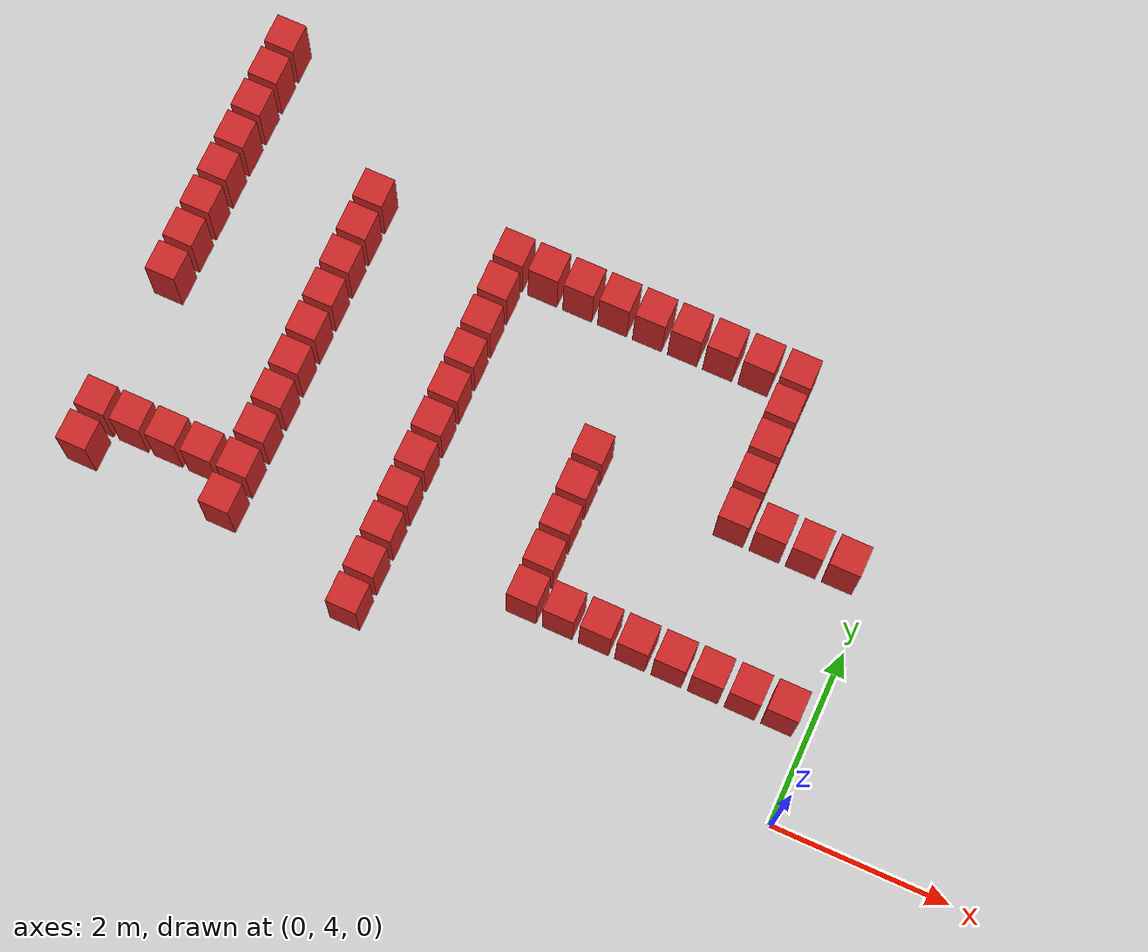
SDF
<sdf version="1.6">
 <world name="default">
  <model name="ground_plane">
   <static>1</static>
   <link name="link">
    <collision name="collision">
     <geometry><plane><normal>0 0 1</normal><size>100 100</size></plane></geometry>
     <surface><friction><ode><mu>100</mu><mu2>50</mu2></ode></friction></surface>
    </collision>
    <visual name="visual">
     <cast_shadows>0</cast_shadows>
     <geometry><plane><normal>0 0 1</normal><size>100 100</size></plane></geometry>
     <material>
      <script><uri>file://media/materials/scripts/gazebo.material</uri><name>Gazebo/Grey</name></script>
     </material>
    </visual>
   </link>
  </model>
  <model name="box_obstacle25">
   <static>0</static>
   <link name="link">
    <pose>0 0 0.1 0 -0 0</pose>
    <inertial>
     <mass>100</mass>
     <inertia>
      <ixx>0.166667</ixx>
      <ixy>0</ixy>
      <ixz>0</ixz>
      <iyy>0.166667</iyy>
      <iyz>0</iyz>
      <izz>0.166667</izz>
     </inertia>
    </inertial>
    <collision name="collision"><geometry><box><size>0.35 0.35 0.8</size></box></geometry></collision>
    <visual name="visual">
     <geometry><box><size>0.35 0.35 0.8</size></box></geometry>
     <material>
      <script><name>Gazebo/Red</name><uri>file://media/materials/scripts/gazebo.material</uri></script>
     </material>
    </visual>
   </link>
   <pose>-8.32034 4.70006 0.300001 -1e-06 1.7e-05 0.000735</pose>
  </model>
  <model name="box_obstacle26">
   <static>0</static>
   <link name="link">
    <pose>0 0 0.1 0 -0 0</pose>
    <inertial>
     <mass>100</mass>
     <inertia>
      <ixx>0.166667</ixx>
      <ixy>0</ixy>
      <ixz>0</ixz>
      <iyy>0.166667</iyy>
      <iyz>0</iyz>
      <izz>0.166667</izz>
     </inertia>
    </inertial>
    <collision name="collision"><geometry><box><size>0.35 0.35 0.8</size></box></geometry></collision>
    <visual name="visual">
     <geometry><box><size>0.35 0.35 0.8</size></box></geometry>
     <material>
      <script><name>Gazebo/Red</name><uri>file://media/materials/scripts/gazebo.material</uri></script>
     </material>
    </visual>
   </link>
   <pose>-8.32034 5.12006 0.300001 -1e-06 1.7e-05 0.000735</pose>
  </model>
  <model name="box_obstacle27">
   <static>0</static>
   <link name="link">
    <pose>0 0 0.1 0 -0 0</pose>
    <inertial>
     <mass>100</mass>
     <inertia>
      <ixx>0.166667</ixx>
      <ixy>0</ixy>
      <ixz>0</ixz>
      <iyy>0.166667</iyy>
      <iyz>0</iyz>
      <izz>0.166667</izz>
     </inertia>
    </inertial>
    <collision name="collision"><geometry><box><size>0.35 0.35 0.8</size></box></geometry></collision>
    <visual name="visual">
     <geometry><box><size>0.35 0.35 0.8</size></box></geometry>
     <material>
      <script><name>Gazebo/Red</name><uri>file://media/materials/scripts/gazebo.material</uri></script>
     </material>
    </visual>
   </link>
   <pose>-8.32034 6.80006 0.300001 -1e-06 1.7e-05 0.000735</pose>
  </model>
  <model name="box_obstacle28">
   <static>0</static>
   <link name="link">
    <pose>0 0 0.1 0 -0 0</pose>
    <inertial>
     <mass>100</mass>
     <inertia>
      <ixx>0.166667</ixx>
      <ixy>0</ixy>
      <ixz>0</ixz>
      <iyy>0.166667</iyy>
      <iyz>0</iyz>
      <izz>0.166667</izz>
     </inertia>
    </inertial>
    <collision name="collision"><geometry><box><size>0.35 0.35 0.8</size></box></geometry></collision>
    <visual name="visual">
     <geometry><box><size>0.35 0.35 0.8</size></box></geometry>
     <material>
      <script><name>Gazebo/Red</name><uri>file://media/materials/scripts/gazebo.material</uri></script>
     </material>
    </visual>
   </link>
   <pose>-8.32034 7.22006 0.300001 -1e-06 1.7e-05 0.000735</pose>
  </model>
  <model name="box_obstacle29">
   <static>0</static>
   <link name="link">
    <pose>0 0 0.1 0 -0 0</pose>
    <inertial>
     <mass>100</mass>
     <inertia>
      <ixx>0.166667</ixx>
      <ixy>0</ixy>
      <ixz>0</ixz>
      <iyy>0.166667</iyy>
      <iyz>0</iyz>
      <izz>0.166667</izz>
     </inertia>
    </inertial>
    <collision name="collision"><geometry><box><size>0.35 0.35 0.8</size></box></geometry></collision>
    <visual name="visual">
     <geometry><box><size>0.35 0.35 0.8</size></box></geometry>
     <material>
      <script><name>Gazebo/Red</name><uri>file://media/materials/scripts/gazebo.material</uri></script>
     </material>
    </visual>
   </link>
   <pose>-8.32034 7.64006 0.300001 -1e-06 1.7e-05 0.000735</pose>
  </model>
  <model name="box_obstacle30">
   <static>0</static>
   <link name="link">
    <pose>0 0 0.1 0 -0 0</pose>
    <inertial>
     <mass>100</mass>
     <inertia>
      <ixx>0.166667</ixx>
      <ixy>0</ixy>
      <ixz>0</ixz>
      <iyy>0.166667</iyy>
      <iyz>0</iyz>
      <izz>0.166667</izz>
     </inertia>
    </inertial>
    <collision name="collision"><geometry><box><size>0.35 0.35 0.8</size></box></geometry></collision>
    <visual name="visual">
     <geometry><box><size>0.35 0.35 0.8</size></box></geometry>
     <material>
      <script><name>Gazebo/Red</name><uri>file://media/materials/scripts/gazebo.material</uri></script>
     </material>
    </visual>
   </link>
   <pose>-8.32034 8.06006 0.300001 -1e-06 1.7e-05 0.000735</pose>
  </model>
  <model name="box_obstacle31">
   <static>0</static>
   <link name="link">
    <pose>0 0 0.1 0 -0 0</pose>
    <inertial>
     <mass>100</mass>
     <inertia>
      <ixx>0.166667</ixx>
      <ixy>0</ixy>
      <ixz>0</ixz>
      <iyy>0.166667</iyy>
      <iyz>0</iyz>
      <izz>0.166667</izz>
     </inertia>
    </inertial>
    <collision name="collision"><geometry><box><size>0.35 0.35 0.8</size></box></geometry></collision>
    <visual name="visual">
     <geometry><box><size>0.35 0.35 0.8</size></box></geometry>
     <material>
      <script><name>Gazebo/Red</name><uri>file://media/materials/scripts/gazebo.material</uri></script>
     </material>
    </visual>
   </link>
   <pose>-8.32034 8.48006 0.300001 -1e-06 1.7e-05 0.000735</pose>
  </model>
  <model name="box_obstacle32">
   <static>0</static>
   <link name="link">
    <pose>0 0 0.1 0 -0 0</pose>
    <inertial>
     <mass>100</mass>
     <inertia>
      <ixx>0.166667</ixx>
      <ixy>0</ixy>
      <ixz>0</ixz>
      <iyy>0.166667</iyy>
      <iyz>0</iyz>
      <izz>0.166667</izz>
     </inertia>
    </inertial>
    <collision name="collision"><geometry><box><size>0.35 0.35 0.8</size></box></geometry></collision>
    <visual name="visual">
     <geometry><box><size>0.35 0.35 0.8</size></box></geometry>
     <material>
      <script><name>Gazebo/Red</name><uri>file://media/materials/scripts/gazebo.material</uri></script>
     </material>
    </visual>
   </link>
   <pose>-8.32034 8.90006 0.300001 -1e-06 1.7e-05 0.000735</pose>
  </model>
  <model name="box_obstacle33">
   <static>0</static>
   <link name="link">
    <pose>0 0 0.1 0 -0 0</pose>
    <inertial>
     <mass>100</mass>
     <inertia>
      <ixx>0.166667</ixx>
      <ixy>0</ixy>
      <ixz>0</ixz>
      <iyy>0.166667</iyy>
      <iyz>0</iyz>
      <izz>0.166667</izz>
     </inertia>
    </inertial>
    <collision name="collision"><geometry><box><size>0.35 0.35 0.8</size></box></geometry></collision>
    <visual name="visual">
     <geometry><box><size>0.35 0.35 0.8</size></box></geometry>
     <material>
      <script><name>Gazebo/Red</name><uri>file://media/materials/scripts/gazebo.material</uri></script>
     </material>
    </visual>
   </link>
   <pose>-8.32034 9.32006 0.300001 -1e-06 1.7e-05 0.000735</pose>
  </model>
  <model name="box_obstacle34">
   <static>0</static>
   <link name="link">
    <pose>0 0 0.1 0 -0 0</pose>
    <inertial>
     <mass>100</mass>
     <inertia>
      <ixx>0.166667</ixx>
      <ixy>0</ixy>
      <ixz>0</ixz>
      <iyy>0.166667</iyy>
      <iyz>0</iyz>
      <izz>0.166667</izz>
     </inertia>
    </inertial>
    <collision name="collision"><geometry><box><size>0.35 0.35 0.8</size></box></geometry></collision>
    <visual name="visual">
     <geometry><box><size>0.35 0.35 0.8</size></box></geometry>
     <material>
      <script><name>Gazebo/Red</name><uri>file://media/materials/scripts/gazebo.material</uri></script>
     </material>
    </visual>
   </link>
   <pose>-8.32034 9.74006 0.300001 -1e-06 1.7e-05 0.000735</pose>
  </model>
  <model name="box_obstacle39">
   <static>0</static>
   <link name="link">
    <pose>0 0 0.1 0 -0 0</pose>
    <inertial>
     <mass>100</mass>
     <inertia>
      <ixx>0.166667</ixx>
      <ixy>0</ixy>
      <ixz>0</ixz>
      <iyy>0.166667</iyy>
      <iyz>0</iyz>
      <izz>0.166667</izz>
     </inertia>
    </inertial>
    <collision name="collision"><geometry><box><size>0.35 0.35 0.8</size></box></geometry></collision>
    <visual name="visual">
     <geometry><box><size>0.35 0.35 0.8</size></box></geometry>
     <material>
      <script><name>Gazebo/Red</name><uri>file://media/materials/scripts/gazebo.material</uri></script>
     </material>
    </visual>
   </link>
   <pose>-7.90034 5.12006 0.300001 -1e-06 1.7e-05 0.000735</pose>
  </model>
  <model name="box_obstacle44">
   <static>0</static>
   <link name="link">
    <pose>0 0 0.1 0 -0 0</pose>
    <inertial>
     <mass>100</mass>
     <inertia>
      <ixx>0.166667</ixx>
      <ixy>0</ixy>
      <ixz>0</ixz>
      <iyy>0.166667</iyy>
      <iyz>0</iyz>
      <izz>0.166667</izz>
     </inertia>
    </inertial>
    <collision name="collision"><geometry><box><size>0.35 0.35 0.8</size></box></geometry></collision>
    <visual name="visual">
     <geometry><box><size>0.35 0.35 0.8</size></box></geometry>
     <material>
      <script><name>Gazebo/Red</name><uri>file://media/materials/scripts/gazebo.material</uri></script>
     </material>
    </visual>
   </link>
   <pose>-7.48034 5.12006 0.300001 -1e-06 1.7e-05 0.000735</pose>
  </model>
  <model name="box_obstacle49">
   <static>0</static>
   <link name="link">
    <pose>0 0 0.1 0 -0 0</pose>
    <inertial>
     <mass>100</mass>
     <inertia>
      <ixx>0.166667</ixx>
      <ixy>0</ixy>
      <ixz>0</ixz>
      <iyy>0.166667</iyy>
      <iyz>0</iyz>
      <izz>0.166667</izz>
     </inertia>
    </inertial>
    <collision name="collision"><geometry><box><size>0.35 0.35 0.8</size></box></geometry></collision>
    <visual name="visual">
     <geometry><box><size>0.35 0.35 0.8</size></box></geometry>
     <material>
      <script><name>Gazebo/Red</name><uri>file://media/materials/scripts/gazebo.material</uri></script>
     </material>
    </visual>
   </link>
   <pose>-7.06034 5.12006 0.300001 -1e-06 1.7e-05 0.000735</pose>
  </model>
  <model name="box_obstacle72">
   <static>0</static>
   <link name="link">
    <pose>0 0 0.1 0 -0 0</pose>
    <inertial>
     <mass>100</mass>
     <inertia>
      <ixx>0.166667</ixx>
      <ixy>0</ixy>
      <ixz>0</ixz>
      <iyy>0.166667</iyy>
      <iyz>0</iyz>
      <izz>0.166667</izz>
     </inertia>
    </inertial>
    <collision name="collision"><geometry><box><size>0.35 0.35 0.8</size></box></geometry></collision>
    <visual name="visual">
     <geometry><box><size>0.35 0.35 0.8</size></box></geometry>
     <material>
      <script><name>Gazebo/Red</name><uri>file://media/materials/scripts/gazebo.material</uri></script>
     </material>
    </visual>
   </link>
   <pose>-6.64034 4.70006 0.300001 -1e-06 1.7e-05 0.000735</pose>
  </model>
  <model name="box_obstacle73">
   <static>0</static>
   <link name="link">
    <pose>0 0 0.1 0 -0 0</pose>
    <inertial>
     <mass>100</mass>
     <inertia>
      <ixx>0.166667</ixx>
      <ixy>0</ixy>
      <ixz>0</ixz>
      <iyy>0.166667</iyy>
      <iyz>0</iyz>
      <izz>0.166667</izz>
     </inertia>
    </inertial>
    <collision name="collision"><geometry><box><size>0.35 0.35 0.8</size></box></geometry></collision>
    <visual name="visual">
     <geometry><box><size>0.35 0.35 0.8</size></box></geometry>
     <material>
      <script><name>Gazebo/Red</name><uri>file://media/materials/scripts/gazebo.material</uri></script>
     </material>
    </visual>
   </link>
   <pose>-6.64034 5.12006 0.300001 -1e-06 1.7e-05 0.000735</pose>
  </model>
  <model name="box_obstacle74">
   <static>0</static>
   <link name="link">
    <pose>0 0 0.1 0 -0 0</pose>
    <inertial>
     <mass>100</mass>
     <inertia>
      <ixx>0.166667</ixx>
      <ixy>0</ixy>
      <ixz>0</ixz>
      <iyy>0.166667</iyy>
      <iyz>0</iyz>
      <izz>0.166667</izz>
     </inertia>
    </inertial>
    <collision name="collision"><geometry><box><size>0.35 0.35 0.8</size></box></geometry></collision>
    <visual name="visual">
     <geometry><box><size>0.35 0.35 0.8</size></box></geometry>
     <material>
      <script><name>Gazebo/Red</name><uri>file://media/materials/scripts/gazebo.material</uri></script>
     </material>
    </visual>
   </link>
   <pose>-6.64034 5.54006 0.300001 -1e-06 1.7e-05 0.000735</pose>
  </model>
  <model name="box_obstacle75">
   <static>0</static>
   <link name="link">
    <pose>0 0 0.1 0 -0 0</pose>
    <inertial>
     <mass>100</mass>
     <inertia>
      <ixx>0.166667</ixx>
      <ixy>0</ixy>
      <ixz>0</ixz>
      <iyy>0.166667</iyy>
      <iyz>0</iyz>
      <izz>0.166667</izz>
     </inertia>
    </inertial>
    <collision name="collision"><geometry><box><size>0.35 0.35 0.8</size></box></geometry></collision>
    <visual name="visual">
     <geometry><box><size>0.35 0.35 0.8</size></box></geometry>
     <material>
      <script><name>Gazebo/Red</name><uri>file://media/materials/scripts/gazebo.material</uri></script>
     </material>
    </visual>
   </link>
   <pose>-6.64034 5.96006 0.300001 -1e-06 1.7e-05 0.000735</pose>
  </model>
  <model name="box_obstacle76">
   <static>0</static>
   <link name="link">
    <pose>0 0 0.1 0 -0 0</pose>
    <inertial>
     <mass>100</mass>
     <inertia>
      <ixx>0.166667</ixx>
      <ixy>0</ixy>
      <ixz>0</ixz>
      <iyy>0.166667</iyy>
      <iyz>0</iyz>
      <izz>0.166667</izz>
     </inertia>
    </inertial>
    <collision name="collision"><geometry><box><size>0.35 0.35 0.8</size></box></geometry></collision>
    <visual name="visual">
     <geometry><box><size>0.35 0.35 0.8</size></box></geometry>
     <material>
      <script><name>Gazebo/Red</name><uri>file://media/materials/scripts/gazebo.material</uri></script>
     </material>
    </visual>
   </link>
   <pose>-6.64034 6.38006 0.300001 -1e-06 1.7e-05 0.000735</pose>
  </model>
  <model name="box_obstacle77">
   <static>0</static>
   <link name="link">
    <pose>0 0 0.1 0 -0 0</pose>
    <inertial>
     <mass>100</mass>
     <inertia>
      <ixx>0.166667</ixx>
      <ixy>0</ixy>
      <ixz>0</ixz>
      <iyy>0.166667</iyy>
      <iyz>0</iyz>
      <izz>0.166667</izz>
     </inertia>
    </inertial>
    <collision name="collision"><geometry><box><size>0.35 0.35 0.8</size></box></geometry></collision>
    <visual name="visual">
     <geometry><box><size>0.35 0.35 0.8</size></box></geometry>
     <material>
      <script><name>Gazebo/Red</name><uri>file://media/materials/scripts/gazebo.material</uri></script>
     </material>
    </visual>
   </link>
   <pose>-6.64034 6.80006 0.300001 -1e-06 1.7e-05 0.000735</pose>
  </model>
  <model name="box_obstacle78">
   <static>0</static>
   <link name="link">
    <pose>0 0 0.1 0 -0 0</pose>
    <inertial>
     <mass>100</mass>
     <inertia>
      <ixx>0.166667</ixx>
      <ixy>0</ixy>
      <ixz>0</ixz>
      <iyy>0.166667</iyy>
      <iyz>0</iyz>
      <izz>0.166667</izz>
     </inertia>
    </inertial>
    <collision name="collision"><geometry><box><size>0.35 0.35 0.8</size></box></geometry></collision>
    <visual name="visual">
     <geometry><box><size>0.35 0.35 0.8</size></box></geometry>
     <material>
      <script><name>Gazebo/Red</name><uri>file://media/materials/scripts/gazebo.material</uri></script>
     </material>
    </visual>
   </link>
   <pose>-6.64034 7.22006 0.300001 -1e-06 1.7e-05 0.000735</pose>
  </model>
  <model name="box_obstacle79">
   <static>0</static>
   <link name="link">
    <pose>0 0 0.1 0 -0 0</pose>
    <inertial>
     <mass>100</mass>
     <inertia>
      <ixx>0.166667</ixx>
      <ixy>0</ixy>
      <ixz>0</ixz>
      <iyy>0.166667</iyy>
      <iyz>0</iyz>
      <izz>0.166667</izz>
     </inertia>
    </inertial>
    <collision name="collision"><geometry><box><size>0.35 0.35 0.8</size></box></geometry></collision>
    <visual name="visual">
     <geometry><box><size>0.35 0.35 0.8</size></box></geometry>
     <material>
      <script><name>Gazebo/Red</name><uri>file://media/materials/scripts/gazebo.material</uri></script>
     </material>
    </visual>
   </link>
   <pose>-6.64034 7.64006 0.300001 -1e-06 1.7e-05 0.000735</pose>
  </model>
  <model name="box_obstacle80">
   <static>0</static>
   <link name="link">
    <pose>0 0 0.1 0 -0 0</pose>
    <inertial>
     <mass>100</mass>
     <inertia>
      <ixx>0.166667</ixx>
      <ixy>0</ixy>
      <ixz>0</ixz>
      <iyy>0.166667</iyy>
      <iyz>0</iyz>
      <izz>0.166667</izz>
     </inertia>
    </inertial>
    <collision name="collision"><geometry><box><size>0.35 0.35 0.8</size></box></geometry></collision>
    <visual name="visual">
     <geometry><box><size>0.35 0.35 0.8</size></box></geometry>
     <material>
      <script><name>Gazebo/Red</name><uri>file://media/materials/scripts/gazebo.material</uri></script>
     </material>
    </visual>
   </link>
   <pose>-6.64034 8.06006 0.300001 -1e-06 1.7e-05 0.000735</pose>
  </model>
  <model name="box_obstacle81">
   <static>0</static>
   <link name="link">
    <pose>0 0 0.1 0 -0 0</pose>
    <inertial>
     <mass>100</mass>
     <inertia>
      <ixx>0.166667</ixx>
      <ixy>0</ixy>
      <ixz>0</ixz>
      <iyy>0.166667</iyy>
      <iyz>0</iyz>
      <izz>0.166667</izz>
     </inertia>
    </inertial>
    <collision name="collision"><geometry><box><size>0.35 0.35 0.8</size></box></geometry></collision>
    <visual name="visual">
     <geometry><box><size>0.35 0.35 0.8</size></box></geometry>
     <material>
      <script><name>Gazebo/Red</name><uri>file://media/materials/scripts/gazebo.material</uri></script>
     </material>
    </visual>
   </link>
   <pose>-6.64034 8.48006 0.300001 -1e-06 1.7e-05 0.000735</pose>
  </model>
  <model name="box_obstacle112">
   <static>0</static>
   <link name="link">
    <pose>0 0 0.1 0 -0 0</pose>
    <inertial>
     <mass>100</mass>
     <inertia>
      <ixx>0.166667</ixx>
      <ixy>0</ixy>
      <ixz>0</ixz>
      <iyy>0.166667</iyy>
      <iyz>0</iyz>
      <izz>0.166667</izz>
     </inertia>
    </inertial>
    <collision name="collision"><geometry><box><size>0.35 0.35 0.8</size></box></geometry></collision>
    <visual name="visual">
     <geometry><box><size>0.35 0.35 0.8</size></box></geometry>
     <material>
      <script><name>Gazebo/Red</name><uri>file://media/materials/scripts/gazebo.material</uri></script>
     </material>
    </visual>
   </link>
   <pose>-4.96034 4.28006 0.300001 -1e-06 1.7e-05 0.000735</pose>
  </model>
  <model name="box_obstacle113">
   <static>0</static>
   <link name="link">
    <pose>0 0 0.1 0 -0 0</pose>
    <inertial>
     <mass>100</mass>
     <inertia>
      <ixx>0.166667</ixx>
      <ixy>0</ixy>
      <ixz>0</ixz>
      <iyy>0.166667</iyy>
      <iyz>0</iyz>
      <izz>0.166667</izz>
     </inertia>
    </inertial>
    <collision name="collision"><geometry><box><size>0.35 0.35 0.8</size></box></geometry></collision>
    <visual name="visual">
     <geometry><box><size>0.35 0.35 0.8</size></box></geometry>
     <material>
      <script><name>Gazebo/Red</name><uri>file://media/materials/scripts/gazebo.material</uri></script>
     </material>
    </visual>
   </link>
   <pose>-4.96034 4.70006 0.300001 -1e-06 1.7e-05 0.000735</pose>
  </model>
  <model name="box_obstacle114">
   <static>0</static>
   <link name="link">
    <pose>0 0 0.1 0 -0 0</pose>
    <inertial>
     <mass>100</mass>
     <inertia>
      <ixx>0.166667</ixx>
      <ixy>0</ixy>
      <ixz>0</ixz>
      <iyy>0.166667</iyy>
      <iyz>0</iyz>
      <izz>0.166667</izz>
     </inertia>
    </inertial>
    <collision name="collision"><geometry><box><size>0.35 0.35 0.8</size></box></geometry></collision>
    <visual name="visual">
     <geometry><box><size>0.35 0.35 0.8</size></box></geometry>
     <material>
      <script><name>Gazebo/Red</name><uri>file://media/materials/scripts/gazebo.material</uri></script>
     </material>
    </visual>
   </link>
   <pose>-4.96034 5.12006 0.300001 -1e-06 1.7e-05 0.000735</pose>
  </model>
  <model name="box_obstacle115">
   <static>0</static>
   <link name="link">
    <pose>0 0 0.1 0 -0 0</pose>
    <inertial>
     <mass>100</mass>
     <inertia>
      <ixx>0.166667</ixx>
      <ixy>0</ixy>
      <ixz>0</ixz>
      <iyy>0.166667</iyy>
      <iyz>0</iyz>
      <izz>0.166667</izz>
     </inertia>
    </inertial>
    <collision name="collision"><geometry><box><size>0.35 0.35 0.8</size></box></geometry></collision>
    <visual name="visual">
     <geometry><box><size>0.35 0.35 0.8</size></box></geometry>
     <material>
      <script><name>Gazebo/Red</name><uri>file://media/materials/scripts/gazebo.material</uri></script>
     </material>
    </visual>
   </link>
   <pose>-4.96034 5.54006 0.300001 -1e-06 1.7e-05 0.000735</pose>
  </model>
  <model name="box_obstacle116">
   <static>0</static>
   <link name="link">
    <pose>0 0 0.1 0 -0 0</pose>
    <inertial>
     <mass>100</mass>
     <inertia>
      <ixx>0.166667</ixx>
      <ixy>0</ixy>
      <ixz>0</ixz>
      <iyy>0.166667</iyy>
      <iyz>0</iyz>
      <izz>0.166667</izz>
     </inertia>
    </inertial>
    <collision name="collision"><geometry><box><size>0.35 0.35 0.8</size></box></geometry></collision>
    <visual name="visual">
     <geometry><box><size>0.35 0.35 0.8</size></box></geometry>
     <material>
      <script><name>Gazebo/Red</name><uri>file://media/materials/scripts/gazebo.material</uri></script>
     </material>
    </visual>
   </link>
   <pose>-4.96034 5.96006 0.300001 -1e-06 1.7e-05 0.000735</pose>
  </model>
  <model name="box_obstacle117">
   <static>0</static>
   <link name="link">
    <pose>0 0 0.1 0 -0 0</pose>
    <inertial>
     <mass>100</mass>
     <inertia>
      <ixx>0.166667</ixx>
      <ixy>0</ixy>
      <ixz>0</ixz>
      <iyy>0.166667</iyy>
      <iyz>0</iyz>
      <izz>0.166667</izz>
     </inertia>
    </inertial>
    <collision name="collision"><geometry><box><size>0.35 0.35 0.8</size></box></geometry></collision>
    <visual name="visual">
     <geometry><box><size>0.35 0.35 0.8</size></box></geometry>
     <material>
      <script><name>Gazebo/Red</name><uri>file://media/materials/scripts/gazebo.material</uri></script>
     </material>
    </visual>
   </link>
   <pose>-4.96034 6.38006 0.300001 -1e-06 1.7e-05 0.000735</pose>
  </model>
  <model name="box_obstacle118">
   <static>0</static>
   <link name="link">
    <pose>0 0 0.1 0 -0 0</pose>
    <inertial>
     <mass>100</mass>
     <inertia>
      <ixx>0.166667</ixx>
      <ixy>0</ixy>
      <ixz>0</ixz>
      <iyy>0.166667</iyy>
      <iyz>0</iyz>
      <izz>0.166667</izz>
     </inertia>
    </inertial>
    <collision name="collision"><geometry><box><size>0.35 0.35 0.8</size></box></geometry></collision>
    <visual name="visual">
     <geometry><box><size>0.35 0.35 0.8</size></box></geometry>
     <material>
      <script><name>Gazebo/Red</name><uri>file://media/materials/scripts/gazebo.material</uri></script>
     </material>
    </visual>
   </link>
   <pose>-4.96034 6.80006 0.300001 -1e-06 1.7e-05 0.000735</pose>
  </model>
  <model name="box_obstacle119">
   <static>0</static>
   <link name="link">
    <pose>0 0 0.1 0 -0 0</pose>
    <inertial>
     <mass>100</mass>
     <inertia>
      <ixx>0.166667</ixx>
      <ixy>0</ixy>
      <ixz>0</ixz>
      <iyy>0.166667</iyy>
      <iyz>0</iyz>
      <izz>0.166667</izz>
     </inertia>
    </inertial>
    <collision name="collision"><geometry><box><size>0.35 0.35 0.8</size></box></geometry></collision>
    <visual name="visual">
     <geometry><box><size>0.35 0.35 0.8</size></box></geometry>
     <material>
      <script><name>Gazebo/Red</name><uri>file://media/materials/scripts/gazebo.material</uri></script>
     </material>
    </visual>
   </link>
   <pose>-4.96034 7.22006 0.300001 -1e-06 1.7e-05 0.000735</pose>
  </model>
  <model name="box_obstacle120">
   <static>0</static>
   <link name="link">
    <pose>0 0 0.1 0 -0 0</pose>
    <inertial>
     <mass>100</mass>
     <inertia>
      <ixx>0.166667</ixx>
      <ixy>0</ixy>
      <ixz>0</ixz>
      <iyy>0.166667</iyy>
      <iyz>0</iyz>
      <izz>0.166667</izz>
     </inertia>
    </inertial>
    <collision name="collision"><geometry><box><size>0.35 0.35 0.8</size></box></geometry></collision>
    <visual name="visual">
     <geometry><box><size>0.35 0.35 0.8</size></box></geometry>
     <material>
      <script><name>Gazebo/Red</name><uri>file://media/materials/scripts/gazebo.material</uri></script>
     </material>
    </visual>
   </link>
   <pose>-4.96034 7.64006 0.300001 -1e-06 1.7e-05 0.000735</pose>
  </model>
  <model name="box_obstacle121">
   <static>0</static>
   <link name="link">
    <pose>0 0 0.1 0 -0 0</pose>
    <inertial>
     <mass>100</mass>
     <inertia>
      <ixx>0.166667</ixx>
      <ixy>0</ixy>
      <ixz>0</ixz>
      <iyy>0.166667</iyy>
      <iyz>0</iyz>
      <izz>0.166667</izz>
     </inertia>
    </inertial>
    <collision name="collision"><geometry><box><size>0.35 0.35 0.8</size></box></geometry></collision>
    <visual name="visual">
     <geometry><box><size>0.35 0.35 0.8</size></box></geometry>
     <material>
      <script><name>Gazebo/Red</name><uri>file://media/materials/scripts/gazebo.material</uri></script>
     </material>
    </visual>
   </link>
   <pose>-4.96034 8.06006 0.300001 -1e-06 1.7e-05 0.000735</pose>
  </model>
  <model name="box_obstacle122">
   <static>0</static>
   <link name="link">
    <pose>0 0 0.1 0 -0 0</pose>
    <inertial>
     <mass>100</mass>
     <inertia>
      <ixx>0.166667</ixx>
      <ixy>0</ixy>
      <ixz>0</ixz>
      <iyy>0.166667</iyy>
      <iyz>0</iyz>
      <izz>0.166667</izz>
     </inertia>
    </inertial>
    <collision name="collision"><geometry><box><size>0.35 0.35 0.8</size></box></geometry></collision>
    <visual name="visual">
     <geometry><box><size>0.35 0.35 0.8</size></box></geometry>
     <material>
      <script><name>Gazebo/Red</name><uri>file://media/materials/scripts/gazebo.material</uri></script>
     </material>
    </visual>
   </link>
   <pose>-4.96034 8.48006 0.300001 -1e-06 1.7e-05 0.000735</pose>
  </model>
  <model name="box_obstacle127">
   <static>0</static>
   <link name="link">
    <pose>0 0 0.1 0 -0 0</pose>
    <inertial>
     <mass>100</mass>
     <inertia>
      <ixx>0.166667</ixx>
      <ixy>0</ixy>
      <ixz>0</ixz>
      <iyy>0.166667</iyy>
      <iyz>0</iyz>
      <izz>0.166667</izz>
     </inertia>
    </inertial>
    <collision name="collision"><geometry><box><size>0.35 0.35 0.8</size></box></geometry></collision>
    <visual name="visual">
     <geometry><box><size>0.35 0.35 0.8</size></box></geometry>
     <material>
      <script><name>Gazebo/Red</name><uri>file://media/materials/scripts/gazebo.material</uri></script>
     </material>
    </visual>
   </link>
   <pose>-4.54034 8.48006 0.300001 -1e-06 1.7e-05 0.000735</pose>
  </model>
  <model name="box_obstacle132">
   <static>0</static>
   <link name="link">
    <pose>0 0 0.1 0 -0 0</pose>
    <inertial>
     <mass>100</mass>
     <inertia>
      <ixx>0.166667</ixx>
      <ixy>0</ixy>
      <ixz>0</ixz>
      <iyy>0.166667</iyy>
      <iyz>0</iyz>
      <izz>0.166667</izz>
     </inertia>
    </inertial>
    <collision name="collision"><geometry><box><size>0.35 0.35 0.8</size></box></geometry></collision>
    <visual name="visual">
     <geometry><box><size>0.35 0.35 0.8</size></box></geometry>
     <material>
      <script><name>Gazebo/Red</name><uri>file://media/materials/scripts/gazebo.material</uri></script>
     </material>
    </visual>
   </link>
   <pose>-4.12034 8.48006 0.300001 -1e-06 1.7e-05 0.000735</pose>
  </model>
  <model name="box_obstacle137">
   <static>0</static>
   <link name="link">
    <pose>0 0 0.1 0 -0 0</pose>
    <inertial>
     <mass>100</mass>
     <inertia>
      <ixx>0.166667</ixx>
      <ixy>0</ixy>
      <ixz>0</ixz>
      <iyy>0.166667</iyy>
      <iyz>0</iyz>
      <izz>0.166667</izz>
     </inertia>
    </inertial>
    <collision name="collision"><geometry><box><size>0.35 0.35 0.8</size></box></geometry></collision>
    <visual name="visual">
     <geometry><box><size>0.35 0.35 0.8</size></box></geometry>
     <material>
      <script><name>Gazebo/Red</name><uri>file://media/materials/scripts/gazebo.material</uri></script>
     </material>
    </visual>
   </link>
   <pose>-3.70034 8.48006 0.300001 -1e-06 1.7e-05 0.000735</pose>
  </model>
  <model name="box_obstacle161">
   <static>0</static>
   <link name="link">
    <pose>0 0 0.1 0 -0 0</pose>
    <inertial>
     <mass>100</mass>
     <inertia>
      <ixx>0.166667</ixx>
      <ixy>0</ixy>
      <ixz>0</ixz>
      <iyy>0.166667</iyy>
      <iyz>0</iyz>
      <izz>0.166667</izz>
     </inertia>
    </inertial>
    <collision name="collision"><geometry><box><size>0.35 0.35 0.8</size></box></geometry></collision>
    <visual name="visual">
     <geometry><box><size>0.35 0.35 0.8</size></box></geometry>
     <material>
      <script><name>Gazebo/Red</name><uri>file://media/materials/scripts/gazebo.material</uri></script>
     </material>
    </visual>
   </link>
   <pose>-3.28034 5.12006 0.300001 -1e-06 1.7e-05 0.000735</pose>
  </model>
  <model name="box_obstacle162">
   <static>0</static>
   <link name="link">
    <pose>0 0 0.1 0 -0 0</pose>
    <inertial>
     <mass>100</mass>
     <inertia>
      <ixx>0.166667</ixx>
      <ixy>0</ixy>
      <ixz>0</ixz>
      <iyy>0.166667</iyy>
      <iyz>0</iyz>
      <izz>0.166667</izz>
     </inertia>
    </inertial>
    <collision name="collision"><geometry><box><size>0.35 0.35 0.8</size></box></geometry></collision>
    <visual name="visual">
     <geometry><box><size>0.35 0.35 0.8</size></box></geometry>
     <material>
      <script><name>Gazebo/Red</name><uri>file://media/materials/scripts/gazebo.material</uri></script>
     </material>
    </visual>
   </link>
   <pose>-3.28034 5.54006 0.300001 -1e-06 1.7e-05 0.000735</pose>
  </model>
  <model name="box_obstacle163">
   <static>0</static>
   <link name="link">
    <pose>0 0 0.1 0 -0 0</pose>
    <inertial>
     <mass>100</mass>
     <inertia>
      <ixx>0.166667</ixx>
      <ixy>0</ixy>
      <ixz>0</ixz>
      <iyy>0.166667</iyy>
      <iyz>0</iyz>
      <izz>0.166667</izz>
     </inertia>
    </inertial>
    <collision name="collision"><geometry><box><size>0.35 0.35 0.8</size></box></geometry></collision>
    <visual name="visual">
     <geometry><box><size>0.35 0.35 0.8</size></box></geometry>
     <material>
      <script><name>Gazebo/Red</name><uri>file://media/materials/scripts/gazebo.material</uri></script>
     </material>
    </visual>
   </link>
   <pose>-3.28034 5.96006 0.300001 -1e-06 1.7e-05 0.000735</pose>
  </model>
  <model name="box_obstacle164">
   <static>0</static>
   <link name="link">
    <pose>0 0 0.1 0 -0 0</pose>
    <inertial>
     <mass>100</mass>
     <inertia>
      <ixx>0.166667</ixx>
      <ixy>0</ixy>
      <ixz>0</ixz>
      <iyy>0.166667</iyy>
      <iyz>0</iyz>
      <izz>0.166667</izz>
     </inertia>
    </inertial>
    <collision name="collision"><geometry><box><size>0.35 0.35 0.8</size></box></geometry></collision>
    <visual name="visual">
     <geometry><box><size>0.35 0.35 0.8</size></box></geometry>
     <material>
      <script><name>Gazebo/Red</name><uri>file://media/materials/scripts/gazebo.material</uri></script>
     </material>
    </visual>
   </link>
   <pose>-3.28034 6.38006 0.300001 -1e-06 1.7e-05 0.000735</pose>
  </model>
  <model name="box_obstacle165">
   <static>0</static>
   <link name="link">
    <pose>0 0 0.1 0 -0 0</pose>
    <inertial>
     <mass>100</mass>
     <inertia>
      <ixx>0.166667</ixx>
      <ixy>0</ixy>
      <ixz>0</ixz>
      <iyy>0.166667</iyy>
      <iyz>0</iyz>
      <izz>0.166667</izz>
     </inertia>
    </inertial>
    <collision name="collision"><geometry><box><size>0.35 0.35 0.8</size></box></geometry></collision>
    <visual name="visual">
     <geometry><box><size>0.35 0.35 0.8</size></box></geometry>
     <material>
      <script><name>Gazebo/Red</name><uri>file://media/materials/scripts/gazebo.material</uri></script>
     </material>
    </visual>
   </link>
   <pose>-3.28034 6.80006 0.300001 -1e-06 1.7e-05 0.000735</pose>
  </model>
  <model name="box_obstacle166">
   <static>0</static>
   <link name="link">
    <pose>0 0 0.1 0 -0 0</pose>
    <inertial>
     <mass>100</mass>
     <inertia>
      <ixx>0.166667</ixx>
      <ixy>0</ixy>
      <ixz>0</ixz>
      <iyy>0.166667</iyy>
      <iyz>0</iyz>
      <izz>0.166667</izz>
     </inertia>
    </inertial>
    <collision name="collision"><geometry><box><size>0.35 0.35 0.8</size></box></geometry></collision>
    <visual name="visual">
     <geometry><box><size>0.35 0.35 0.8</size></box></geometry>
     <material>
      <script><name>Gazebo/Red</name><uri>file://media/materials/scripts/gazebo.material</uri></script>
     </material>
    </visual>
   </link>
   <pose>-3.28034 8.48006 0.300001 -1e-06 1.7e-05 0.000735</pose>
  </model>
  <model name="box_obstacle171">
   <static>0</static>
   <link name="link">
    <pose>0 0 0.1 0 -0 0</pose>
    <inertial>
     <mass>100</mass>
     <inertia>
      <ixx>0.166667</ixx>
      <ixy>0</ixy>
      <ixz>0</ixz>
      <iyy>0.166667</iyy>
      <iyz>0</iyz>
      <izz>0.166667</izz>
     </inertia>
    </inertial>
    <collision name="collision"><geometry><box><size>0.35 0.35 0.8</size></box></geometry></collision>
    <visual name="visual">
     <geometry><box><size>0.35 0.35 0.8</size></box></geometry>
     <material>
      <script><name>Gazebo/Red</name><uri>file://media/materials/scripts/gazebo.material</uri></script>
     </material>
    </visual>
   </link>
   <pose>-2.86034 5.12006 0.300001 -1e-06 1.7e-05 0.000735</pose>
  </model>
  <model name="box_obstacle172">
   <static>0</static>
   <link name="link">
    <pose>0 0 0.1 0 -0 0</pose>
    <inertial>
     <mass>100</mass>
     <inertia>
      <ixx>0.166667</ixx>
      <ixy>0</ixy>
      <ixz>0</ixz>
      <iyy>0.166667</iyy>
      <iyz>0</iyz>
      <izz>0.166667</izz>
     </inertia>
    </inertial>
    <collision name="collision"><geometry><box><size>0.35 0.35 0.8</size></box></geometry></collision>
    <visual name="visual">
     <geometry><box><size>0.35 0.35 0.8</size></box></geometry>
     <material>
      <script><name>Gazebo/Red</name><uri>file://media/materials/scripts/gazebo.material</uri></script>
     </material>
    </visual>
   </link>
   <pose>-2.86034 8.48006 0.300001 -1e-06 1.7e-05 0.000735</pose>
  </model>
  <model name="box_obstacle177">
   <static>0</static>
   <link name="link">
    <pose>0 0 0.1 0 -0 0</pose>
    <inertial>
     <mass>100</mass>
     <inertia>
      <ixx>0.166667</ixx>
      <ixy>0</ixy>
      <ixz>0</ixz>
      <iyy>0.166667</iyy>
      <iyz>0</iyz>
      <izz>0.166667</izz>
     </inertia>
    </inertial>
    <collision name="collision"><geometry><box><size>0.35 0.35 0.8</size></box></geometry></collision>
    <visual name="visual">
     <geometry><box><size>0.35 0.35 0.8</size></box></geometry>
     <material>
      <script><name>Gazebo/Red</name><uri>file://media/materials/scripts/gazebo.material</uri></script>
     </material>
    </visual>
   </link>
   <pose>-2.44034 5.12006 0.300001 -1e-06 1.7e-05 0.000735</pose>
  </model>
  <model name="box_obstacle178">
   <static>0</static>
   <link name="link">
    <pose>0 0 0.1 0 -0 0</pose>
    <inertial>
     <mass>100</mass>
     <inertia>
      <ixx>0.166667</ixx>
      <ixy>0</ixy>
      <ixz>0</ixz>
      <iyy>0.166667</iyy>
      <iyz>0</iyz>
      <izz>0.166667</izz>
     </inertia>
    </inertial>
    <collision name="collision"><geometry><box><size>0.35 0.35 0.8</size></box></geometry></collision>
    <visual name="visual">
     <geometry><box><size>0.35 0.35 0.8</size></box></geometry>
     <material>
      <script><name>Gazebo/Red</name><uri>file://media/materials/scripts/gazebo.material</uri></script>
     </material>
    </visual>
   </link>
   <pose>-2.44034 8.48006 0.300001 -1e-06 1.7e-05 0.000735</pose>
  </model>
  <model name="box_obstacle183">
   <static>0</static>
   <link name="link">
    <pose>0 0 0.1 0 -0 0</pose>
    <inertial>
     <mass>100</mass>
     <inertia>
      <ixx>0.166667</ixx>
      <ixy>0</ixy>
      <ixz>0</ixz>
      <iyy>0.166667</iyy>
      <iyz>0</iyz>
      <izz>0.166667</izz>
     </inertia>
    </inertial>
    <collision name="collision"><geometry><box><size>0.35 0.35 0.8</size></box></geometry></collision>
    <visual name="visual">
     <geometry><box><size>0.35 0.35 0.8</size></box></geometry>
     <material>
      <script><name>Gazebo/Red</name><uri>file://media/materials/scripts/gazebo.material</uri></script>
     </material>
    </visual>
   </link>
   <pose>-2.02034 5.12006 0.300001 -1e-06 1.7e-05 0.000735</pose>
  </model>
  <model name="box_obstacle184">
   <static>0</static>
   <link name="link">
    <pose>0 0 0.1 0 -0 0</pose>
    <inertial>
     <mass>100</mass>
     <inertia>
      <ixx>0.166667</ixx>
      <ixy>0</ixy>
      <ixz>0</ixz>
      <iyy>0.166667</iyy>
      <iyz>0</iyz>
      <izz>0.166667</izz>
     </inertia>
    </inertial>
    <collision name="collision"><geometry><box><size>0.35 0.35 0.8</size></box></geometry></collision>
    <visual name="visual">
     <geometry><box><size>0.35 0.35 0.8</size></box></geometry>
     <material>
      <script><name>Gazebo/Red</name><uri>file://media/materials/scripts/gazebo.material</uri></script>
     </material>
    </visual>
   </link>
   <pose>-2.02034 8.48006 0.300001 -1e-06 1.7e-05 0.000735</pose>
  </model>
  <model name="box_obstacle202">
   <static>0</static>
   <link name="link">
    <pose>0 0 0.1 0 -0 0</pose>
    <inertial>
     <mass>100</mass>
     <inertia>
      <ixx>0.166667</ixx>
      <ixy>0</ixy>
      <ixz>0</ixz>
      <iyy>0.166667</iyy>
      <iyz>0</iyz>
      <izz>0.166667</izz>
     </inertia>
    </inertial>
    <collision name="collision"><geometry><box><size>0.35 0.35 0.8</size></box></geometry></collision>
    <visual name="visual">
     <geometry><box><size>0.35 0.35 0.8</size></box></geometry>
     <material>
      <script><name>Gazebo/Red</name><uri>file://media/materials/scripts/gazebo.material</uri></script>
     </material>
    </visual>
   </link>
   <pose>-1.60034 5.12006 0.300001 -1e-06 1.7e-05 0.000735</pose>
  </model>
  <model name="box_obstacle203">
   <static>0</static>
   <link name="link">
    <pose>0 0 0.1 0 -0 0</pose>
    <inertial>
     <mass>100</mass>
     <inertia>
      <ixx>0.166667</ixx>
      <ixy>0</ixy>
      <ixz>0</ixz>
      <iyy>0.166667</iyy>
      <iyz>0</iyz>
      <izz>0.166667</izz>
     </inertia>
    </inertial>
    <collision name="collision"><geometry><box><size>0.35 0.35 0.8</size></box></geometry></collision>
    <visual name="visual">
     <geometry><box><size>0.35 0.35 0.8</size></box></geometry>
     <material>
      <script><name>Gazebo/Red</name><uri>file://media/materials/scripts/gazebo.material</uri></script>
     </material>
    </visual>
   </link>
   <pose>-1.60034 6.80006 0.300001 -1e-06 1.7e-05 0.000735</pose>
  </model>
  <model name="box_obstacle204">
   <static>0</static>
   <link name="link">
    <pose>0 0 0.1 0 -0 0</pose>
    <inertial>
     <mass>100</mass>
     <inertia>
      <ixx>0.166667</ixx>
      <ixy>0</ixy>
      <ixz>0</ixz>
      <iyy>0.166667</iyy>
      <iyz>0</iyz>
      <izz>0.166667</izz>
     </inertia>
    </inertial>
    <collision name="collision"><geometry><box><size>0.35 0.35 0.8</size></box></geometry></collision>
    <visual name="visual">
     <geometry><box><size>0.35 0.35 0.8</size></box></geometry>
     <material>
      <script><name>Gazebo/Red</name><uri>file://media/materials/scripts/gazebo.material</uri></script>
     </material>
    </visual>
   </link>
   <pose>-1.60034 7.22006 0.300001 -1e-06 1.7e-05 0.000735</pose>
  </model>
  <model name="box_obstacle205">
   <static>0</static>
   <link name="link">
    <pose>0 0 0.1 0 -0 0</pose>
    <inertial>
     <mass>100</mass>
     <inertia>
      <ixx>0.166667</ixx>
      <ixy>0</ixy>
      <ixz>0</ixz>
      <iyy>0.166667</iyy>
      <iyz>0</iyz>
      <izz>0.166667</izz>
     </inertia>
    </inertial>
    <collision name="collision"><geometry><box><size>0.35 0.35 0.8</size></box></geometry></collision>
    <visual name="visual">
     <geometry><box><size>0.35 0.35 0.8</size></box></geometry>
     <material>
      <script><name>Gazebo/Red</name><uri>file://media/materials/scripts/gazebo.material</uri></script>
     </material>
    </visual>
   </link>
   <pose>-1.60034 7.64006 0.300001 -1e-06 1.7e-05 0.000735</pose>
  </model>
  <model name="box_obstacle206">
   <static>0</static>
   <link name="link">
    <pose>0 0 0.1 0 -0 0</pose>
    <inertial>
     <mass>100</mass>
     <inertia>
      <ixx>0.166667</ixx>
      <ixy>0</ixy>
      <ixz>0</ixz>
      <iyy>0.166667</iyy>
      <iyz>0</iyz>
      <izz>0.166667</izz>
     </inertia>
    </inertial>
    <collision name="collision"><geometry><box><size>0.35 0.35 0.8</size></box></geometry></collision>
    <visual name="visual">
     <geometry><box><size>0.35 0.35 0.8</size></box></geometry>
     <material>
      <script><name>Gazebo/Red</name><uri>file://media/materials/scripts/gazebo.material</uri></script>
     </material>
    </visual>
   </link>
   <pose>-1.60034 8.06006 0.300001 -1e-06 1.7e-05 0.000735</pose>
  </model>
  <model name="box_obstacle207">
   <static>0</static>
   <link name="link">
    <pose>0 0 0.1 0 -0 0</pose>
    <inertial>
     <mass>100</mass>
     <inertia>
      <ixx>0.166667</ixx>
      <ixy>0</ixy>
      <ixz>0</ixz>
      <iyy>0.166667</iyy>
      <iyz>0</iyz>
      <izz>0.166667</izz>
     </inertia>
    </inertial>
    <collision name="collision"><geometry><box><size>0.35 0.35 0.8</size></box></geometry></collision>
    <visual name="visual">
     <geometry><box><size>0.35 0.35 0.8</size></box></geometry>
     <material>
      <script><name>Gazebo/Red</name><uri>file://media/materials/scripts/gazebo.material</uri></script>
     </material>
    </visual>
   </link>
   <pose>-1.60034 8.48006 0.300001 -1e-06 1.7e-05 0.000735</pose>
  </model>
  <model name="box_obstacle212">
   <static>0</static>
   <link name="link">
    <pose>0 0 0.1 0 -0 0</pose>
    <inertial>
     <mass>100</mass>
     <inertia>
      <ixx>0.166667</ixx>
      <ixy>0</ixy>
      <ixz>0</ixz>
      <iyy>0.166667</iyy>
      <iyz>0</iyz>
      <izz>0.166667</izz>
     </inertia>
    </inertial>
    <collision name="collision"><geometry><box><size>0.35 0.35 0.8</size></box></geometry></collision>
    <visual name="visual">
     <geometry><box><size>0.35 0.35 0.8</size></box></geometry>
     <material>
      <script><name>Gazebo/Red</name><uri>file://media/materials/scripts/gazebo.material</uri></script>
     </material>
    </visual>
   </link>
   <pose>-1.18034 5.12006 0.300001 -1e-06 1.7e-05 0.000735</pose>
  </model>
  <model name="box_obstacle213">
   <static>0</static>
   <link name="link">
    <pose>0 0 0.1 0 -0 0</pose>
    <inertial>
     <mass>100</mass>
     <inertia>
      <ixx>0.166667</ixx>
      <ixy>0</ixy>
      <ixz>0</ixz>
      <iyy>0.166667</iyy>
      <iyz>0</iyz>
      <izz>0.166667</izz>
     </inertia>
    </inertial>
    <collision name="collision"><geometry><box><size>0.35 0.35 0.8</size></box></geometry></collision>
    <visual name="visual">
     <geometry><box><size>0.35 0.35 0.8</size></box></geometry>
     <material>
      <script><name>Gazebo/Red</name><uri>file://media/materials/scripts/gazebo.material</uri></script>
     </material>
    </visual>
   </link>
   <pose>-1.18034 6.80006 0.300001 -1e-06 1.7e-05 0.000735</pose>
  </model>
  <model name="box_obstacle218">
   <static>0</static>
   <link name="link">
    <pose>0 0 0.1 0 -0 0</pose>
    <inertial>
     <mass>100</mass>
     <inertia>
      <ixx>0.166667</ixx>
      <ixy>0</ixy>
      <ixz>0</ixz>
      <iyy>0.166667</iyy>
      <iyz>0</iyz>
      <izz>0.166667</izz>
     </inertia>
    </inertial>
    <collision name="collision"><geometry><box><size>0.35 0.35 0.8</size></box></geometry></collision>
    <visual name="visual">
     <geometry><box><size>0.35 0.35 0.8</size></box></geometry>
     <material>
      <script><name>Gazebo/Red</name><uri>file://media/materials/scripts/gazebo.material</uri></script>
     </material>
    </visual>
   </link>
   <pose>-0.760339 5.12006 0.300001 -1e-06 1.7e-05 0.000735</pose>
  </model>
  <model name="box_obstacle219">
   <static>0</static>
   <link name="link">
    <pose>0 0 0.1 0 -0 0</pose>
    <inertial>
     <mass>100</mass>
     <inertia>
      <ixx>0.166667</ixx>
      <ixy>0</ixy>
      <ixz>0</ixz>
      <iyy>0.166667</iyy>
      <iyz>0</iyz>
      <izz>0.166667</izz>
     </inertia>
    </inertial>
    <collision name="collision"><geometry><box><size>0.35 0.35 0.8</size></box></geometry></collision>
    <visual name="visual">
     <geometry><box><size>0.35 0.35 0.8</size></box></geometry>
     <material>
      <script><name>Gazebo/Red</name><uri>file://media/materials/scripts/gazebo.material</uri></script>
     </material>
    </visual>
   </link>
   <pose>-0.760339 6.80006 0.300001 -1e-06 1.7e-05 0.000735</pose>
  </model>
  <model name="box_obstacle224">
   <static>0</static>
   <link name="link">
    <pose>0 0 0.1 0 -0 0</pose>
    <inertial>
     <mass>100</mass>
     <inertia>
      <ixx>0.166667</ixx>
      <ixy>0</ixy>
      <ixz>0</ixz>
      <iyy>0.166667</iyy>
      <iyz>0</iyz>
      <izz>0.166667</izz>
     </inertia>
    </inertial>
    <collision name="collision"><geometry><box><size>0.35 0.35 0.8</size></box></geometry></collision>
    <visual name="visual">
     <geometry><box><size>0.35 0.35 0.8</size></box></geometry>
     <material>
      <script><name>Gazebo/Red</name><uri>file://media/materials/scripts/gazebo.material</uri></script>
     </material>
    </visual>
   </link>
   <pose>-0.340339 5.12006 0.300001 -1e-06 1.7e-05 0.000735</pose>
  </model>
  <model name="box_obstacle225">
   <static>0</static>
   <link name="link">
    <pose>0 0 0.1 0 -0 0</pose>
    <inertial>
     <mass>100</mass>
     <inertia>
      <ixx>0.166667</ixx>
      <ixy>0</ixy>
      <ixz>0</ixz>
      <iyy>0.166667</iyy>
      <iyz>0</iyz>
      <izz>0.166667</izz>
     </inertia>
    </inertial>
    <collision name="collision"><geometry><box><size>0.35 0.35 0.8</size></box></geometry></collision>
    <visual name="visual">
     <geometry><box><size>0.35 0.35 0.8</size></box></geometry>
     <material>
      <script><name>Gazebo/Red</name><uri>file://media/materials/scripts/gazebo.material</uri></script>
     </material>
    </visual>
   </link>
   <pose>-0.340339 6.80006 0.300001 -1e-06 1.7e-05 0.000735</pose>
  </model>
 </world>
</sdf>
